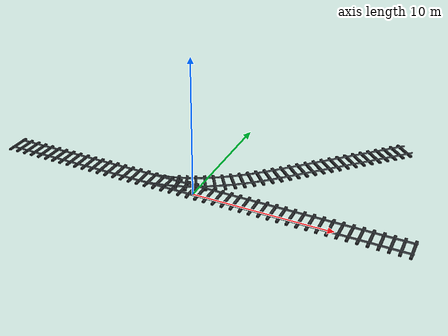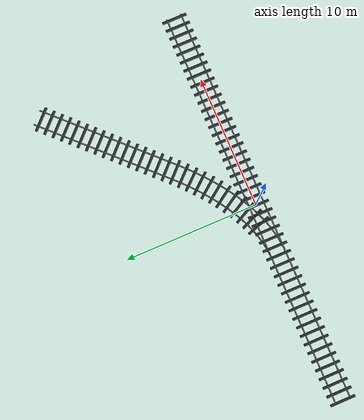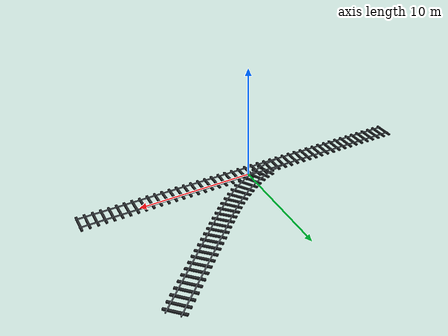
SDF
<sdf version="1.7">
 <world name="route_choice_training">
  <model name="route_choice_track">
   <static>true</static>
   <link name="track_link">
    <visual name="main_rail_left_000">
     <pose>0.00000 0.55000 0.35000 0 0 0.0000000</pose>
     <geometry><box><size>30.06000 0.07500 0.10000</size></box></geometry>
     <material>
      <ambient>0.42 0.45 0.48 1</ambient>
      <diffuse>0.42 0.45 0.48 1</diffuse>
      <specular>0.35 0.35 0.35 1</specular>
     </material>
    </visual>
    <visual name="main_rail_right_000">
     <pose>0.00000 -0.55000 0.35000 0 0 0.0000000</pose>
     <geometry><box><size>30.06000 0.07500 0.10000</size></box></geometry>
     <material>
      <ambient>0.42 0.45 0.48 1</ambient>
      <diffuse>0.42 0.45 0.48 1</diffuse>
      <specular>0.35 0.35 0.35 1</specular>
     </material>
    </visual>
    <collision name="main_support_000">
     <pose>0.00000 0.00000 0.30500 0 0 0.0000000</pose>
     <geometry><box><size>30.06000 2.10 0.05000</size></box></geometry>
     <surface><friction><ode><mu>1.0</mu><mu2>1.0</mu2></ode></friction></surface>
    </collision>
    <visual name="main_sleeper_000">
     <pose>-15.00000 0.00000 0.27000 0 0 0.0000000</pose>
     <geometry><box><size>0.18000 1.85000 0.12000</size></box></geometry>
     <material>
      <ambient>0.16 0.17 0.18 1</ambient>
      <diffuse>0.16 0.17 0.18 1</diffuse>
      <specular>0.35 0.35 0.35 1</specular>
     </material>
    </visual>
    <visual name="main_sleeper_001">
     <pose>-14.35000 0.00000 0.27000 0 0 0.0000000</pose>
     <geometry><box><size>0.18000 1.85000 0.12000</size></box></geometry>
     <material>
      <ambient>0.16 0.17 0.18 1</ambient>
      <diffuse>0.16 0.17 0.18 1</diffuse>
      <specular>0.35 0.35 0.35 1</specular>
     </material>
    </visual>
    <visual name="main_sleeper_002">
     <pose>-13.70000 0.00000 0.27000 0 0 0.0000000</pose>
     <geometry><box><size>0.18000 1.85000 0.12000</size></box></geometry>
     <material>
      <ambient>0.16 0.17 0.18 1</ambient>
      <diffuse>0.16 0.17 0.18 1</diffuse>
      <specular>0.35 0.35 0.35 1</specular>
     </material>
    </visual>
    <visual name="main_sleeper_003">
     <pose>-13.05000 0.00000 0.27000 0 0 0.0000000</pose>
     <geometry><box><size>0.18000 1.85000 0.12000</size></box></geometry>
     <material>
      <ambient>0.16 0.17 0.18 1</ambient>
      <diffuse>0.16 0.17 0.18 1</diffuse>
      <specular>0.35 0.35 0.35 1</specular>
     </material>
    </visual>
    <visual name="main_sleeper_004">
     <pose>-12.40000 0.00000 0.27000 0 0 0.0000000</pose>
     <geometry><box><size>0.18000 1.85000 0.12000</size></box></geometry>
     <material>
      <ambient>0.16 0.17 0.18 1</ambient>
      <diffuse>0.16 0.17 0.18 1</diffuse>
      <specular>0.35 0.35 0.35 1</specular>
     </material>
    </visual>
    <visual name="main_sleeper_005">
     <pose>-11.75000 0.00000 0.27000 0 0 0.0000000</pose>
     <geometry><box><size>0.18000 1.85000 0.12000</size></box></geometry>
     <material>
      <ambient>0.16 0.17 0.18 1</ambient>
      <diffuse>0.16 0.17 0.18 1</diffuse>
      <specular>0.35 0.35 0.35 1</specular>
     </material>
    </visual>
    <visual name="main_sleeper_006">
     <pose>-11.10000 0.00000 0.27000 0 0 0.0000000</pose>
     <geometry><box><size>0.18000 1.85000 0.12000</size></box></geometry>
     <material>
      <ambient>0.16 0.17 0.18 1</ambient>
      <diffuse>0.16 0.17 0.18 1</diffuse>
      <specular>0.35 0.35 0.35 1</specular>
     </material>
    </visual>
    <visual name="main_sleeper_007">
     <pose>-10.45000 0.00000 0.27000 0 0 0.0000000</pose>
     <geometry><box><size>0.18000 1.85000 0.12000</size></box></geometry>
     <material>
      <ambient>0.16 0.17 0.18 1</ambient>
      <diffuse>0.16 0.17 0.18 1</diffuse>
      <specular>0.35 0.35 0.35 1</specular>
     </material>
    </visual>
    <visual name="main_sleeper_008">
     <pose>-9.80000 0.00000 0.27000 0 0 0.0000000</pose>
     <geometry><box><size>0.18000 1.85000 0.12000</size></box></geometry>
     <material>
      <ambient>0.16 0.17 0.18 1</ambient>
      <diffuse>0.16 0.17 0.18 1</diffuse>
      <specular>0.35 0.35 0.35 1</specular>
     </material>
    </visual>
    <visual name="main_sleeper_009">
     <pose>-9.15000 0.00000 0.27000 0 0 0.0000000</pose>
     <geometry><box><size>0.18000 1.85000 0.12000</size></box></geometry>
     <material>
      <ambient>0.16 0.17 0.18 1</ambient>
      <diffuse>0.16 0.17 0.18 1</diffuse>
      <specular>0.35 0.35 0.35 1</specular>
     </material>
    </visual>
    <visual name="main_sleeper_010">
     <pose>-8.50000 0.00000 0.27000 0 0 0.0000000</pose>
     <geometry><box><size>0.18000 1.85000 0.12000</size></box></geometry>
     <material>
      <ambient>0.16 0.17 0.18 1</ambient>
      <diffuse>0.16 0.17 0.18 1</diffuse>
      <specular>0.35 0.35 0.35 1</specular>
     </material>
    </visual>
    <visual name="main_sleeper_011">
     <pose>-7.85000 0.00000 0.27000 0 0 0.0000000</pose>
     <geometry><box><size>0.18000 1.85000 0.12000</size></box></geometry>
     <material>
      <ambient>0.16 0.17 0.18 1</ambient>
      <diffuse>0.16 0.17 0.18 1</diffuse>
      <specular>0.35 0.35 0.35 1</specular>
     </material>
    </visual>
    <visual name="main_sleeper_012">
     <pose>-7.20000 0.00000 0.27000 0 0 0.0000000</pose>
     <geometry><box><size>0.18000 1.85000 0.12000</size></box></geometry>
     <material>
      <ambient>0.16 0.17 0.18 1</ambient>
      <diffuse>0.16 0.17 0.18 1</diffuse>
      <specular>0.35 0.35 0.35 1</specular>
     </material>
    </visual>
    <visual name="main_sleeper_013">
     <pose>-6.55000 0.00000 0.27000 0 0 0.0000000</pose>
     <geometry><box><size>0.18000 1.85000 0.12000</size></box></geometry>
     <material>
      <ambient>0.16 0.17 0.18 1</ambient>
      <diffuse>0.16 0.17 0.18 1</diffuse>
      <specular>0.35 0.35 0.35 1</specular>
     </material>
    </visual>
    <visual name="main_sleeper_014">
     <pose>-5.90000 0.00000 0.27000 0 0 0.0000000</pose>
     <geometry><box><size>0.18000 1.85000 0.12000</size></box></geometry>
     <material>
      <ambient>0.16 0.17 0.18 1</ambient>
      <diffuse>0.16 0.17 0.18 1</diffuse>
      <specular>0.35 0.35 0.35 1</specular>
     </material>
    </visual>
    <visual name="main_sleeper_015">
     <pose>-5.25000 0.00000 0.27000 0 0 0.0000000</pose>
     <geometry><box><size>0.18000 1.85000 0.12000</size></box></geometry>
     <material>
      <ambient>0.16 0.17 0.18 1</ambient>
      <diffuse>0.16 0.17 0.18 1</diffuse>
      <specular>0.35 0.35 0.35 1</specular>
     </material>
    </visual>
    <visual name="main_sleeper_016">
     <pose>-4.60000 0.00000 0.27000 0 0 0.0000000</pose>
     <geometry><box><size>0.18000 1.85000 0.12000</size></box></geometry>
     <material>
      <ambient>0.16 0.17 0.18 1</ambient>
      <diffuse>0.16 0.17 0.18 1</diffuse>
      <specular>0.35 0.35 0.35 1</specular>
     </material>
    </visual>
    <visual name="main_sleeper_017">
     <pose>-3.95000 0.00000 0.27000 0 0 0.0000000</pose>
     <geometry><box><size>0.18000 1.85000 0.12000</size></box></geometry>
     <material>
      <ambient>0.16 0.17 0.18 1</ambient>
      <diffuse>0.16 0.17 0.18 1</diffuse>
      <specular>0.35 0.35 0.35 1</specular>
     </material>
    </visual>
    <visual name="main_sleeper_018">
     <pose>-3.30000 0.00000 0.27000 0 0 0.0000000</pose>
     <geometry><box><size>0.18000 1.85000 0.12000</size></box></geometry>
     <material>
      <ambient>0.16 0.17 0.18 1</ambient>
      <diffuse>0.16 0.17 0.18 1</diffuse>
      <specular>0.35 0.35 0.35 1</specular>
     </material>
    </visual>
    <visual name="main_sleeper_019">
     <pose>-2.65000 0.00000 0.27000 0 0 0.0000000</pose>
     <geometry><box><size>0.18000 1.85000 0.12000</size></box></geometry>
     <material>
      <ambient>0.16 0.17 0.18 1</ambient>
      <diffuse>0.16 0.17 0.18 1</diffuse>
      <specular>0.35 0.35 0.35 1</specular>
     </material>
    </visual>
    <visual name="main_sleeper_020">
     <pose>-2.00000 0.00000 0.27000 0 0 0.0000000</pose>
     <geometry><box><size>0.18000 1.85000 0.12000</size></box></geometry>
     <material>
      <ambient>0.16 0.17 0.18 1</ambient>
      <diffuse>0.16 0.17 0.18 1</diffuse>
      <specular>0.35 0.35 0.35 1</specular>
     </material>
    </visual>
    <visual name="main_sleeper_021">
     <pose>-1.35000 0.00000 0.27000 0 0 0.0000000</pose>
     <geometry><box><size>0.18000 1.85000 0.12000</size></box></geometry>
     <material>
      <ambient>0.16 0.17 0.18 1</ambient>
      <diffuse>0.16 0.17 0.18 1</diffuse>
      <specular>0.35 0.35 0.35 1</specular>
     </material>
    </visual>
    <visual name="main_sleeper_022">
     <pose>-0.70000 0.00000 0.27000 0 0 0.0000000</pose>
     <geometry><box><size>0.18000 1.85000 0.12000</size></box></geometry>
     <material>
      <ambient>0.16 0.17 0.18 1</ambient>
      <diffuse>0.16 0.17 0.18 1</diffuse>
      <specular>0.35 0.35 0.35 1</specular>
     </material>
    </visual>
    <visual name="main_sleeper_023">
     <pose>-0.05000 0.00000 0.27000 0 0 0.0000000</pose>
     <geometry><box><size>0.18000 1.85000 0.12000</size></box></geometry>
     <material>
      <ambient>0.16 0.17 0.18 1</ambient>
      <diffuse>0.16 0.17 0.18 1</diffuse>
      <specular>0.35 0.35 0.35 1</specular>
     </material>
    </visual>
    <visual name="main_sleeper_024">
     <pose>0.60000 0.00000 0.27000 0 0 0.0000000</pose>
     <geometry><box><size>0.18000 1.85000 0.12000</size></box></geometry>
     <material>
      <ambient>0.16 0.17 0.18 1</ambient>
      <diffuse>0.16 0.17 0.18 1</diffuse>
      <specular>0.35 0.35 0.35 1</specular>
     </material>
    </visual>
    <visual name="main_sleeper_025">
     <pose>1.25000 0.00000 0.27000 0 0 0.0000000</pose>
     <geometry><box><size>0.18000 1.85000 0.12000</size></box></geometry>
     <material>
      <ambient>0.16 0.17 0.18 1</ambient>
      <diffuse>0.16 0.17 0.18 1</diffuse>
      <specular>0.35 0.35 0.35 1</specular>
     </material>
    </visual>
    <visual name="main_sleeper_026">
     <pose>1.90000 0.00000 0.27000 0 0 0.0000000</pose>
     <geometry><box><size>0.18000 1.85000 0.12000</size></box></geometry>
     <material>
      <ambient>0.16 0.17 0.18 1</ambient>
      <diffuse>0.16 0.17 0.18 1</diffuse>
      <specular>0.35 0.35 0.35 1</specular>
     </material>
    </visual>
    <visual name="main_sleeper_027">
     <pose>2.55000 0.00000 0.27000 0 0 0.0000000</pose>
     <geometry><box><size>0.18000 1.85000 0.12000</size></box></geometry>
     <material>
      <ambient>0.16 0.17 0.18 1</ambient>
      <diffuse>0.16 0.17 0.18 1</diffuse>
      <specular>0.35 0.35 0.35 1</specular>
     </material>
    </visual>
    <visual name="main_sleeper_028">
     <pose>3.20000 0.00000 0.27000 0 0 0.0000000</pose>
     <geometry><box><size>0.18000 1.85000 0.12000</size></box></geometry>
     <material>
      <ambient>0.16 0.17 0.18 1</ambient>
      <diffuse>0.16 0.17 0.18 1</diffuse>
      <specular>0.35 0.35 0.35 1</specular>
     </material>
    </visual>
    <visual name="main_sleeper_029">
     <pose>3.85000 0.00000 0.27000 0 0 0.0000000</pose>
     <geometry><box><size>0.18000 1.85000 0.12000</size></box></geometry>
     <material>
      <ambient>0.16 0.17 0.18 1</ambient>
      <diffuse>0.16 0.17 0.18 1</diffuse>
      <specular>0.35 0.35 0.35 1</specular>
     </material>
    </visual>
    <visual name="main_sleeper_030">
     <pose>4.50000 0.00000 0.27000 0 0 0.0000000</pose>
     <geometry><box><size>0.18000 1.85000 0.12000</size></box></geometry>
     <material>
      <ambient>0.16 0.17 0.18 1</ambient>
      <diffuse>0.16 0.17 0.18 1</diffuse>
      <specular>0.35 0.35 0.35 1</specular>
     </material>
    </visual>
    <visual name="main_sleeper_031">
     <pose>5.15000 0.00000 0.27000 0 0 0.0000000</pose>
     <geometry><box><size>0.18000 1.85000 0.12000</size></box></geometry>
     <material>
      <ambient>0.16 0.17 0.18 1</ambient>
      <diffuse>0.16 0.17 0.18 1</diffuse>
      <specular>0.35 0.35 0.35 1</specular>
     </material>
    </visual>
    <visual name="main_sleeper_032">
     <pose>5.80000 0.00000 0.27000 0 0 0.0000000</pose>
     <geometry><box><size>0.18000 1.85000 0.12000</size></box></geometry>
     <material>
      <ambient>0.16 0.17 0.18 1</ambient>
      <diffuse>0.16 0.17 0.18 1</diffuse>
      <specular>0.35 0.35 0.35 1</specular>
     </material>
    </visual>
    <visual name="main_sleeper_033">
     <pose>6.45000 0.00000 0.27000 0 0 0.0000000</pose>
     <geometry><box><size>0.18000 1.85000 0.12000</size></box></geometry>
     <material>
      <ambient>0.16 0.17 0.18 1</ambient>
      <diffuse>0.16 0.17 0.18 1</diffuse>
      <specular>0.35 0.35 0.35 1</specular>
     </material>
    </visual>
    <visual name="main_sleeper_034">
     <pose>7.10000 0.00000 0.27000 0 0 0.0000000</pose>
     <geometry><box><size>0.18000 1.85000 0.12000</size></box></geometry>
     <material>
      <ambient>0.16 0.17 0.18 1</ambient>
      <diffuse>0.16 0.17 0.18 1</diffuse>
      <specular>0.35 0.35 0.35 1</specular>
     </material>
    </visual>
    <visual name="main_sleeper_035">
     <pose>7.75000 0.00000 0.27000 0 0 0.0000000</pose>
     <geometry><box><size>0.18000 1.85000 0.12000</size></box></geometry>
     <material>
      <ambient>0.16 0.17 0.18 1</ambient>
      <diffuse>0.16 0.17 0.18 1</diffuse>
      <specular>0.35 0.35 0.35 1</specular>
     </material>
    </visual>
    <visual name="main_sleeper_036">
     <pose>8.40000 0.00000 0.27000 0 0 0.0000000</pose>
     <geometry><box><size>0.18000 1.85000 0.12000</size></box></geometry>
     <material>
      <ambient>0.16 0.17 0.18 1</ambient>
      <diffuse>0.16 0.17 0.18 1</diffuse>
      <specular>0.35 0.35 0.35 1</specular>
     </material>
    </visual>
    <visual name="main_sleeper_037">
     <pose>9.05000 0.00000 0.27000 0 0 0.0000000</pose>
     <geometry><box><size>0.18000 1.85000 0.12000</size></box></geometry>
     <material>
      <ambient>0.16 0.17 0.18 1</ambient>
      <diffuse>0.16 0.17 0.18 1</diffuse>
      <specular>0.35 0.35 0.35 1</specular>
     </material>
    </visual>
    <visual name="main_sleeper_038">
     <pose>9.70000 0.00000 0.27000 0 0 0.0000000</pose>
     <geometry><box><size>0.18000 1.85000 0.12000</size></box></geometry>
     <material>
      <ambient>0.16 0.17 0.18 1</ambient>
      <diffuse>0.16 0.17 0.18 1</diffuse>
      <specular>0.35 0.35 0.35 1</specular>
     </material>
    </visual>
    <visual name="main_sleeper_039">
     <pose>10.35000 0.00000 0.27000 0 0 0.0000000</pose>
     <geometry><box><size>0.18000 1.85000 0.12000</size></box></geometry>
     <material>
      <ambient>0.16 0.17 0.18 1</ambient>
      <diffuse>0.16 0.17 0.18 1</diffuse>
      <specular>0.35 0.35 0.35 1</specular>
     </material>
    </visual>
    <visual name="main_sleeper_040">
     <pose>11.00000 0.00000 0.27000 0 0 0.0000000</pose>
     <geometry><box><size>0.18000 1.85000 0.12000</size></box></geometry>
     <material>
      <ambient>0.16 0.17 0.18 1</ambient>
      <diffuse>0.16 0.17 0.18 1</diffuse>
      <specular>0.35 0.35 0.35 1</specular>
     </material>
    </visual>
    <visual name="main_sleeper_041">
     <pose>11.65000 0.00000 0.27000 0 0 0.0000000</pose>
     <geometry><box><size>0.18000 1.85000 0.12000</size></box></geometry>
     <material>
      <ambient>0.16 0.17 0.18 1</ambient>
      <diffuse>0.16 0.17 0.18 1</diffuse>
      <specular>0.35 0.35 0.35 1</specular>
     </material>
    </visual>
    <visual name="main_sleeper_042">
     <pose>12.30000 0.00000 0.27000 0 0 0.0000000</pose>
     <geometry><box><size>0.18000 1.85000 0.12000</size></box></geometry>
     <material>
      <ambient>0.16 0.17 0.18 1</ambient>
      <diffuse>0.16 0.17 0.18 1</diffuse>
      <specular>0.35 0.35 0.35 1</specular>
     </material>
    </visual>
    <visual name="main_sleeper_043">
     <pose>12.95000 0.00000 0.27000 0 0 0.0000000</pose>
     <geometry><box><size>0.18000 1.85000 0.12000</size></box></geometry>
     <material>
      <ambient>0.16 0.17 0.18 1</ambient>
      <diffuse>0.16 0.17 0.18 1</diffuse>
      <specular>0.35 0.35 0.35 1</specular>
     </material>
    </visual>
    <visual name="main_sleeper_044">
     <pose>13.60000 0.00000 0.27000 0 0 0.0000000</pose>
     <geometry><box><size>0.18000 1.85000 0.12000</size></box></geometry>
     <material>
      <ambient>0.16 0.17 0.18 1</ambient>
      <diffuse>0.16 0.17 0.18 1</diffuse>
      <specular>0.35 0.35 0.35 1</specular>
     </material>
    </visual>
    <visual name="main_sleeper_045">
     <pose>14.25000 0.00000 0.27000 0 0 0.0000000</pose>
     <geometry><box><size>0.18000 1.85000 0.12000</size></box></geometry>
     <material>
      <ambient>0.16 0.17 0.18 1</ambient>
      <diffuse>0.16 0.17 0.18 1</diffuse>
      <specular>0.35 0.35 0.35 1</specular>
     </material>
    </visual>
    <visual name="main_sleeper_046">
     <pose>14.90000 0.00000 0.27000 0 0 0.0000000</pose>
     <geometry><box><size>0.18000 1.85000 0.12000</size></box></geometry>
     <material>
      <ambient>0.16 0.17 0.18 1</ambient>
      <diffuse>0.16 0.17 0.18 1</diffuse>
      <specular>0.35 0.35 0.35 1</specular>
     </material>
    </visual>
    <visual name="branch_rail_left_000">
     <pose>-3.82763 0.55495 0.35000 0 0 0.0274842</pose>
     <geometry><box><size>0.43511 0.07500 0.10000</size></box></geometry>
     <material>
      <ambient>0.42 0.45 0.48 1</ambient>
      <diffuse>0.42 0.45 0.48 1</diffuse>
      <specular>0.35 0.35 0.35 1</specular>
     </material>
    </visual>
    <visual name="branch_rail_right_000">
     <pose>-3.79740 -0.54464 0.35000 0 0 0.0274842</pose>
     <geometry><box><size>0.43511 0.07500 0.10000</size></box></geometry>
     <material>
      <ambient>0.42 0.45 0.48 1</ambient>
      <diffuse>0.42 0.45 0.48 1</diffuse>
      <specular>0.35 0.35 0.35 1</specular>
     </material>
    </visual>
    <collision name="branch_support_000">
     <pose>-3.81252 0.00515 0.30500 0 0 0.0274842</pose>
     <geometry><box><size>0.43511 2.10 0.05000</size></box></geometry>
     <surface><friction><ode><mu>1.0</mu><mu2>1.0</mu2></ode></friction></surface>
    </collision>
    <visual name="branch_rail_left_001">
     <pose>-3.48226 0.57374 0.35000 0 0 0.0811840</pose>
     <geometry><box><size>0.43599 0.07500 0.10000</size></box></geometry>
     <material>
      <ambient>0.42 0.45 0.48 1</ambient>
      <diffuse>0.42 0.45 0.48 1</diffuse>
      <specular>0.35 0.35 0.35 1</specular>
     </material>
    </visual>
    <visual name="branch_rail_right_001">
     <pose>-3.39306 -0.52264 0.35000 0 0 0.0811840</pose>
     <geometry><box><size>0.43599 0.07500 0.10000</size></box></geometry>
     <material>
      <ambient>0.42 0.45 0.48 1</ambient>
      <diffuse>0.42 0.45 0.48 1</diffuse>
      <specular>0.35 0.35 0.35 1</specular>
     </material>
    </visual>
    <collision name="branch_support_001">
     <pose>-3.43766 0.02555 0.30500 0 0 0.0811840</pose>
     <geometry><box><size>0.43599 2.10 0.05000</size></box></geometry>
     <surface><friction><ode><mu>1.0</mu><mu2>1.0</mu2></ode></friction></surface>
    </collision>
    <visual name="branch_rail_left_002">
     <pose>-3.13599 0.61096 0.35000 0 0 0.1328490</pose>
     <geometry><box><size>0.43764 0.07500 0.10000</size></box></geometry>
     <material>
      <ambient>0.42 0.45 0.48 1</ambient>
      <diffuse>0.42 0.45 0.48 1</diffuse>
      <specular>0.35 0.35 0.35 1</specular>
     </material>
    </visual>
    <visual name="branch_rail_right_002">
     <pose>-2.99028 -0.47934 0.35000 0 0 0.1328490</pose>
     <geometry><box><size>0.43764 0.07500 0.10000</size></box></geometry>
     <material>
      <ambient>0.42 0.45 0.48 1</ambient>
      <diffuse>0.42 0.45 0.48 1</diffuse>
      <specular>0.35 0.35 0.35 1</specular>
     </material>
    </visual>
    <collision name="branch_support_002">
     <pose>-3.06313 0.06581 0.30500 0 0 0.1328490</pose>
     <geometry><box><size>0.43764 2.10 0.05000</size></box></geometry>
     <surface><friction><ode><mu>1.0</mu><mu2>1.0</mu2></ode></friction></surface>
    </collision>
    <visual name="branch_rail_left_003">
     <pose>-2.78888 0.66615 0.35000 0 0 0.1823482</pose>
     <geometry><box><size>0.43996 0.07500 0.10000</size></box></geometry>
     <material>
      <ambient>0.42 0.45 0.48 1</ambient>
      <diffuse>0.42 0.45 0.48 1</diffuse>
      <specular>0.35 0.35 0.35 1</specular>
     </material>
    </visual>
    <visual name="branch_rail_right_003">
     <pose>-2.58941 -0.41561 0.35000 0 0 0.1823482</pose>
     <geometry><box><size>0.43996 0.07500 0.10000</size></box></geometry>
     <material>
      <ambient>0.42 0.45 0.48 1</ambient>
      <diffuse>0.42 0.45 0.48 1</diffuse>
      <specular>0.35 0.35 0.35 1</specular>
     </material>
    </visual>
    <collision name="branch_support_003">
     <pose>-2.68915 0.12527 0.30500 0 0 0.1823482</pose>
     <geometry><box><size>0.43996 2.10 0.05000</size></box></geometry>
     <surface><friction><ode><mu>1.0</mu><mu2>1.0</mu2></ode></friction></surface>
    </collision>
    <visual name="branch_rail_left_004">
     <pose>-2.44109 0.73885 0.35000 0 0 0.2296030</pose>
     <geometry><box><size>0.44284 0.07500 0.10000</size></box></geometry>
     <material>
      <ambient>0.42 0.45 0.48 1</ambient>
      <diffuse>0.42 0.45 0.48 1</diffuse>
      <specular>0.35 0.35 0.35 1</specular>
     </material>
    </visual>
    <visual name="branch_rail_right_004">
     <pose>-2.19074 -0.33228 0.35000 0 0 0.2296030</pose>
     <geometry><box><size>0.44284 0.07500 0.10000</size></box></geometry>
     <material>
      <ambient>0.42 0.45 0.48 1</ambient>
      <diffuse>0.42 0.45 0.48 1</diffuse>
      <specular>0.35 0.35 0.35 1</specular>
     </material>
    </visual>
    <collision name="branch_support_004">
     <pose>-2.31592 0.20329 0.30500 0 0 0.2296030</pose>
     <geometry><box><size>0.44284 2.10 0.05000</size></box></geometry>
     <surface><friction><ode><mu>1.0</mu><mu2>1.0</mu2></ode></friction></surface>
    </collision>
    <visual name="branch_rail_left_005">
     <pose>-2.09280 0.82860 0.35000 0 0 0.2745816</pose>
     <geometry><box><size>0.44618 0.07500 0.10000</size></box></geometry>
     <material>
      <ambient>0.42 0.45 0.48 1</ambient>
      <diffuse>0.42 0.45 0.48 1</diffuse>
      <specular>0.35 0.35 0.35 1</specular>
     </material>
    </visual>
    <visual name="branch_rail_right_005">
     <pose>-1.79454 -0.23019 0.35000 0 0 0.2745816</pose>
     <geometry><box><size>0.44618 0.07500 0.10000</size></box></geometry>
     <material>
      <ambient>0.42 0.45 0.48 1</ambient>
      <diffuse>0.42 0.45 0.48 1</diffuse>
      <specular>0.35 0.35 0.35 1</specular>
     </material>
    </visual>
    <collision name="branch_support_005">
     <pose>-1.94367 0.29921 0.30500 0 0 0.2745816</pose>
     <geometry><box><size>0.44618 2.10 0.05000</size></box></geometry>
     <surface><friction><ode><mu>1.0</mu><mu2>1.0</mu2></ode></friction></surface>
    </collision>
    <visual name="branch_rail_left_006">
     <pose>-1.74421 0.93493 0.35000 0 0 0.3172913</pose>
     <geometry><box><size>0.44987 0.07500 0.10000</size></box></geometry>
     <material>
      <ambient>0.42 0.45 0.48 1</ambient>
      <diffuse>0.42 0.45 0.48 1</diffuse>
      <specular>0.35 0.35 0.35 1</specular>
     </material>
    </visual>
    <visual name="branch_rail_right_006">
     <pose>-1.40101 -0.11017 0.35000 0 0 0.3172913</pose>
     <geometry><box><size>0.44987 0.07500 0.10000</size></box></geometry>
     <material>
      <ambient>0.42 0.45 0.48 1</ambient>
      <diffuse>0.42 0.45 0.48 1</diffuse>
      <specular>0.35 0.35 0.35 1</specular>
     </material>
    </visual>
    <collision name="branch_support_006">
     <pose>-1.57261 0.41238 0.30500 0 0 0.3172913</pose>
     <geometry><box><size>0.44987 2.10 0.05000</size></box></geometry>
     <surface><friction><ode><mu>1.0</mu><mu2>1.0</mu2></ode></friction></surface>
    </collision>
    <visual name="branch_rail_left_007">
     <pose>-1.39557 1.05733 0.35000 0 0 0.3577710</pose>
     <geometry><box><size>0.45382 0.07500 0.10000</size></box></geometry>
     <material>
      <ambient>0.42 0.45 0.48 1</ambient>
      <diffuse>0.42 0.45 0.48 1</diffuse>
      <specular>0.35 0.35 0.35 1</specular>
     </material>
    </visual>
    <visual name="branch_rail_right_007">
     <pose>-1.01036 0.02698 0.35000 0 0 0.3577710</pose>
     <geometry><box><size>0.45382 0.07500 0.10000</size></box></geometry>
     <material>
      <ambient>0.42 0.45 0.48 1</ambient>
      <diffuse>0.42 0.45 0.48 1</diffuse>
      <specular>0.35 0.35 0.35 1</specular>
     </material>
    </visual>
    <collision name="branch_support_007">
     <pose>-1.20296 0.54215 0.30500 0 0 0.3577710</pose>
     <geometry><box><size>0.45382 2.10 0.05000</size></box></geometry>
     <surface><friction><ode><mu>1.0</mu><mu2>1.0</mu2></ode></friction></surface>
    </collision>
    <visual name="branch_rail_left_008">
     <pose>-1.04714 1.19530 0.35000 0 0 0.3960845</pose>
     <geometry><box><size>0.45796 0.07500 0.10000</size></box></geometry>
     <material>
      <ambient>0.42 0.45 0.48 1</ambient>
      <diffuse>0.42 0.45 0.48 1</diffuse>
      <specular>0.35 0.35 0.35 1</specular>
     </material>
    </visual>
    <visual name="branch_rail_right_008">
     <pose>-0.62275 0.18046 0.35000 0 0 0.3960845</pose>
     <geometry><box><size>0.45796 0.07500 0.10000</size></box></geometry>
     <material>
      <ambient>0.42 0.45 0.48 1</ambient>
      <diffuse>0.42 0.45 0.48 1</diffuse>
      <specular>0.35 0.35 0.35 1</specular>
     </material>
    </visual>
    <collision name="branch_support_008">
     <pose>-0.83494 0.68788 0.30500 0 0 0.3960845</pose>
     <geometry><box><size>0.45796 2.10 0.05000</size></box></geometry>
     <surface><friction><ode><mu>1.0</mu><mu2>1.0</mu2></ode></friction></surface>
    </collision>
    <visual name="branch_rail_left_009">
     <pose>-0.69920 1.34830 0.35000 0 0 0.4323136</pose>
     <geometry><box><size>0.46220 0.07500 0.10000</size></box></geometry>
     <material>
      <ambient>0.42 0.45 0.48 1</ambient>
      <diffuse>0.42 0.45 0.48 1</diffuse>
      <specular>0.35 0.35 0.35 1</specular>
     </material>
    </visual>
    <visual name="branch_rail_right_009">
     <pose>-0.23833 0.34950 0.35000 0 0 0.4323136</pose>
     <geometry><box><size>0.46220 0.07500 0.10000</size></box></geometry>
     <material>
      <ambient>0.42 0.45 0.48 1</ambient>
      <diffuse>0.42 0.45 0.48 1</diffuse>
      <specular>0.35 0.35 0.35 1</specular>
     </material>
    </visual>
    <collision name="branch_support_009">
     <pose>-0.46877 0.84890 0.30500 0 0 0.4323136</pose>
     <geometry><box><size>0.46220 2.10 0.05000</size></box></geometry>
     <surface><friction><ode><mu>1.0</mu><mu2>1.0</mu2></ode></friction></surface>
    </collision>
    <visual name="branch_rail_left_010">
     <pose>-0.35205 1.51580 0.35000 0 0 0.4665526</pose>
     <geometry><box><size>0.46647 0.07500 0.10000</size></box></geometry>
     <material>
      <ambient>0.42 0.45 0.48 1</ambient>
      <diffuse>0.42 0.45 0.48 1</diffuse>
      <specular>0.35 0.35 0.35 1</specular>
     </material>
    </visual>
    <visual name="branch_rail_right_010">
     <pose>0.14274 0.53336 0.35000 0 0 0.4665526</pose>
     <geometry><box><size>0.46647 0.07500 0.10000</size></box></geometry>
     <material>
      <ambient>0.42 0.45 0.48 1</ambient>
      <diffuse>0.42 0.45 0.48 1</diffuse>
      <specular>0.35 0.35 0.35 1</specular>
     </material>
    </visual>
    <collision name="branch_support_010">
     <pose>-0.10465 1.02458 0.30500 0 0 0.4665526</pose>
     <geometry><box><size>0.46647 2.10 0.05000</size></box></geometry>
     <surface><friction><ode><mu>1.0</mu><mu2>1.0</mu2></ode></friction></surface>
    </collision>
    <visual name="branch_rail_left_011">
     <pose>-0.00598 1.69721 0.35000 0 0 0.4989039</pose>
     <geometry><box><size>0.47070 0.07500 0.10000</size></box></geometry>
     <material>
      <ambient>0.42 0.45 0.48 1</ambient>
      <diffuse>0.42 0.45 0.48 1</diffuse>
      <specular>0.35 0.35 0.35 1</specular>
     </material>
    </visual>
    <visual name="branch_rail_right_011">
     <pose>0.52033 0.73129 0.35000 0 0 0.4989039</pose>
     <geometry><box><size>0.47070 0.07500 0.10000</size></box></geometry>
     <material>
      <ambient>0.42 0.45 0.48 1</ambient>
      <diffuse>0.42 0.45 0.48 1</diffuse>
      <specular>0.35 0.35 0.35 1</specular>
     </material>
    </visual>
    <collision name="branch_support_011">
     <pose>0.25718 1.21425 0.30500 0 0 0.4989039</pose>
     <geometry><box><size>0.47070 2.10 0.05000</size></box></geometry>
     <surface><friction><ode><mu>1.0</mu><mu2>1.0</mu2></ode></friction></surface>
    </collision>
    <visual name="branch_rail_left_012">
     <pose>0.33872 1.89195 0.35000 0 0 0.5294740</pose>
     <geometry><box><size>0.47484 0.07500 0.10000</size></box></geometry>
     <material>
      <ambient>0.42 0.45 0.48 1</ambient>
      <diffuse>0.42 0.45 0.48 1</diffuse>
      <specular>0.35 0.35 0.35 1</specular>
     </material>
    </visual>
    <visual name="branch_rail_right_012">
     <pose>0.89431 0.94257 0.35000 0 0 0.5294740</pose>
     <geometry><box><size>0.47484 0.07500 0.10000</size></box></geometry>
     <material>
      <ambient>0.42 0.45 0.48 1</ambient>
      <diffuse>0.42 0.45 0.48 1</diffuse>
      <specular>0.35 0.35 0.35 1</specular>
     </material>
    </visual>
    <collision name="branch_support_012">
     <pose>0.61652 1.41726 0.30500 0 0 0.5294740</pose>
     <geometry><box><size>0.47484 2.10 0.05000</size></box></geometry>
     <surface><friction><ode><mu>1.0</mu><mu2>1.0</mu2></ode></friction></surface>
    </collision>
    <visual name="branch_rail_left_013">
     <pose>0.68175 2.09944 0.35000 0 0 0.5583705</pose>
     <geometry><box><size>0.47883 0.07500 0.10000</size></box></geometry>
     <material>
      <ambient>0.42 0.45 0.48 1</ambient>
      <diffuse>0.42 0.45 0.48 1</diffuse>
      <specular>0.35 0.35 0.35 1</specular>
     </material>
    </visual>
    <visual name="branch_rail_right_013">
     <pose>1.26454 1.16651 0.35000 0 0 0.5583705</pose>
     <geometry><box><size>0.47883 0.07500 0.10000</size></box></geometry>
     <material>
      <ambient>0.42 0.45 0.48 1</ambient>
      <diffuse>0.42 0.45 0.48 1</diffuse>
      <specular>0.35 0.35 0.35 1</specular>
     </material>
    </visual>
    <collision name="branch_support_013">
     <pose>0.97314 1.63298 0.30500 0 0 0.5583705</pose>
     <geometry><box><size>0.47883 2.10 0.05000</size></box></geometry>
     <surface><friction><ode><mu>1.0</mu><mu2>1.0</mu2></ode></friction></surface>
    </collision>
    <visual name="branch_rail_left_014">
     <pose>1.02281 2.31906 0.35000 0 0 0.5857002</pose>
     <geometry><box><size>0.48262 0.07500 0.10000</size></box></geometry>
     <material>
      <ambient>0.42 0.45 0.48 1</ambient>
      <diffuse>0.42 0.45 0.48 1</diffuse>
      <specular>0.35 0.35 0.35 1</specular>
     </material>
    </visual>
    <visual name="branch_rail_right_014">
     <pose>1.63087 1.40240 0.35000 0 0 0.5857002</pose>
     <geometry><box><size>0.48262 0.07500 0.10000</size></box></geometry>
     <material>
      <ambient>0.42 0.45 0.48 1</ambient>
      <diffuse>0.42 0.45 0.48 1</diffuse>
      <specular>0.35 0.35 0.35 1</specular>
     </material>
    </visual>
    <collision name="branch_support_014">
     <pose>1.32684 1.86073 0.30500 0 0 0.5857002</pose>
     <geometry><box><size>0.48262 2.10 0.05000</size></box></geometry>
     <surface><friction><ode><mu>1.0</mu><mu2>1.0</mu2></ode></friction></surface>
    </collision>
    <visual name="branch_rail_left_015">
     <pose>1.36161 2.55019 0.35000 0 0 0.6115673</pose>
     <geometry><box><size>0.48616 0.07500 0.10000</size></box></geometry>
     <material>
      <ambient>0.42 0.45 0.48 1</ambient>
      <diffuse>0.42 0.45 0.48 1</diffuse>
      <specular>0.35 0.35 0.35 1</specular>
     </material>
    </visual>
    <visual name="branch_rail_right_015">
     <pose>1.99317 1.64957 0.35000 0 0 0.6115673</pose>
     <geometry><box><size>0.48616 0.07500 0.10000</size></box></geometry>
     <material>
      <ambient>0.42 0.45 0.48 1</ambient>
      <diffuse>0.42 0.45 0.48 1</diffuse>
      <specular>0.35 0.35 0.35 1</specular>
     </material>
    </visual>
    <collision name="branch_support_015">
     <pose>1.67739 2.09988 0.30500 0 0 0.6115673</pose>
     <geometry><box><size>0.48616 2.10 0.05000</size></box></geometry>
     <surface><friction><ode><mu>1.0</mu><mu2>1.0</mu2></ode></friction></surface>
    </collision>
    <visual name="branch_rail_left_016">
     <pose>1.69785 2.79221 0.35000 0 0 0.6360724</pose>
     <geometry><box><size>0.48943 0.07500 0.10000</size></box></geometry>
     <material>
      <ambient>0.42 0.45 0.48 1</ambient>
      <diffuse>0.42 0.45 0.48 1</diffuse>
      <specular>0.35 0.35 0.35 1</specular>
     </material>
    </visual>
    <visual name="branch_rail_right_016">
     <pose>2.35130 1.90733 0.35000 0 0 0.6360724</pose>
     <geometry><box><size>0.48943 0.07500 0.10000</size></box></geometry>
     <material>
      <ambient>0.42 0.45 0.48 1</ambient>
      <diffuse>0.42 0.45 0.48 1</diffuse>
      <specular>0.35 0.35 0.35 1</specular>
     </material>
    </visual>
    <collision name="branch_support_016">
     <pose>2.02458 2.34977 0.30500 0 0 0.6360724</pose>
     <geometry><box><size>0.48943 2.10 0.05000</size></box></geometry>
     <surface><friction><ode><mu>1.0</mu><mu2>1.0</mu2></ode></friction></surface>
    </collision>
    <visual name="branch_rail_left_017">
     <pose>2.03127 3.04448 0.35000 0 0 0.6593117</pose>
     <geometry><box><size>0.49238 0.07500 0.10000</size></box></geometry>
     <material>
      <ambient>0.42 0.45 0.48 1</ambient>
      <diffuse>0.42 0.45 0.48 1</diffuse>
      <specular>0.35 0.35 0.35 1</specular>
     </material>
    </visual>
    <visual name="branch_rail_right_017">
     <pose>2.70510 2.17503 0.35000 0 0 0.6593117</pose>
     <geometry><box><size>0.49238 0.07500 0.10000</size></box></geometry>
     <material>
      <ambient>0.42 0.45 0.48 1</ambient>
      <diffuse>0.42 0.45 0.48 1</diffuse>
      <specular>0.35 0.35 0.35 1</specular>
     </material>
    </visual>
    <collision name="branch_support_017">
     <pose>2.36818 2.60975 0.30500 0 0 0.6593117</pose>
     <geometry><box><size>0.49238 2.10 0.05000</size></box></geometry>
     <surface><friction><ode><mu>1.0</mu><mu2>1.0</mu2></ode></friction></surface>
    </collision>
    <visual name="branch_rail_left_018">
     <pose>2.36157 3.30637 0.35000 0 0 0.6813768</pose>
     <geometry><box><size>0.49498 0.07500 0.10000</size></box></geometry>
     <material>
      <ambient>0.42 0.45 0.48 1</ambient>
      <diffuse>0.42 0.45 0.48 1</diffuse>
      <specular>0.35 0.35 0.35 1</specular>
     </material>
    </visual>
    <visual name="branch_rail_right_018">
     <pose>3.05441 2.45199 0.35000 0 0 0.6813768</pose>
     <geometry><box><size>0.49498 0.07500 0.10000</size></box></geometry>
     <material>
      <ambient>0.42 0.45 0.48 1</ambient>
      <diffuse>0.42 0.45 0.48 1</diffuse>
      <specular>0.35 0.35 0.35 1</specular>
     </material>
    </visual>
    <collision name="branch_support_018">
     <pose>2.70799 2.87918 0.30500 0 0 0.6813768</pose>
     <geometry><box><size>0.49498 2.10 0.05000</size></box></geometry>
     <surface><friction><ode><mu>1.0</mu><mu2>1.0</mu2></ode></friction></surface>
    </collision>
    <visual name="branch_rail_left_019">
     <pose>2.68847 3.57722 0.35000 0 0 0.7023541</pose>
     <geometry><box><size>0.49721 0.07500 0.10000</size></box></geometry>
     <material>
      <ambient>0.42 0.45 0.48 1</ambient>
      <diffuse>0.42 0.45 0.48 1</diffuse>
      <specular>0.35 0.35 0.35 1</specular>
     </material>
    </visual>
    <visual name="branch_rail_right_019">
     <pose>3.39909 2.73756 0.35000 0 0 0.7023541</pose>
     <geometry><box><size>0.49721 0.07500 0.10000</size></box></geometry>
     <material>
      <ambient>0.42 0.45 0.48 1</ambient>
      <diffuse>0.42 0.45 0.48 1</diffuse>
      <specular>0.35 0.35 0.35 1</specular>
     </material>
    </visual>
    <collision name="branch_support_019">
     <pose>3.04378 3.15739 0.30500 0 0 0.7023541</pose>
     <geometry><box><size>0.49721 2.10 0.05000</size></box></geometry>
     <surface><friction><ode><mu>1.0</mu><mu2>1.0</mu2></ode></friction></surface>
    </collision>
    <visual name="branch_rail_left_020">
     <pose>3.01172 3.85639 0.35000 0 0 0.7223253</pose>
     <geometry><box><size>0.49903 0.07500 0.10000</size></box></geometry>
     <material>
      <ambient>0.42 0.45 0.48 1</ambient>
      <diffuse>0.42 0.45 0.48 1</diffuse>
      <specular>0.35 0.35 0.35 1</specular>
     </material>
    </visual>
    <visual name="branch_rail_right_020">
     <pose>3.73897 3.03109 0.35000 0 0 0.7223253</pose>
     <geometry><box><size>0.49903 0.07500 0.10000</size></box></geometry>
     <material>
      <ambient>0.42 0.45 0.48 1</ambient>
      <diffuse>0.42 0.45 0.48 1</diffuse>
      <specular>0.35 0.35 0.35 1</specular>
     </material>
    </visual>
    <collision name="branch_support_020">
     <pose>3.37534 3.44374 0.30500 0 0 0.7223253</pose>
     <geometry><box><size>0.49903 2.10 0.05000</size></box></geometry>
     <surface><friction><ode><mu>1.0</mu><mu2>1.0</mu2></ode></friction></surface>
    </collision>
    <visual name="branch_rail_left_021">
     <pose>3.33104 4.14323 0.35000 0 0 0.7413671</pose>
     <geometry><box><size>0.50042 0.07500 0.10000</size></box></geometry>
     <material>
      <ambient>0.42 0.45 0.48 1</ambient>
      <diffuse>0.42 0.45 0.48 1</diffuse>
      <specular>0.35 0.35 0.35 1</specular>
     </material>
    </visual>
    <visual name="branch_rail_right_021">
     <pose>4.07387 3.33193 0.35000 0 0 0.7413671</pose>
     <geometry><box><size>0.50042 0.07500 0.10000</size></box></geometry>
     <material>
      <ambient>0.42 0.45 0.48 1</ambient>
      <diffuse>0.42 0.45 0.48 1</diffuse>
      <specular>0.35 0.35 0.35 1</specular>
     </material>
    </visual>
    <collision name="branch_support_021">
     <pose>3.70246 3.73758 0.30500 0 0 0.7413671</pose>
     <geometry><box><size>0.50042 2.10 0.05000</size></box></geometry>
     <surface><friction><ode><mu>1.0</mu><mu2>1.0</mu2></ode></friction></surface>
    </collision>
    <visual name="branch_rail_left_022">
     <pose>3.64617 4.43708 0.35000 0 0 0.7595518</pose>
     <geometry><box><size>0.50137 0.07500 0.10000</size></box></geometry>
     <material>
      <ambient>0.42 0.45 0.48 1</ambient>
      <diffuse>0.42 0.45 0.48 1</diffuse>
      <specular>0.35 0.35 0.35 1</specular>
     </material>
    </visual>
    <visual name="branch_rail_right_022">
     <pose>4.40363 3.63942 0.35000 0 0 0.7595518</pose>
     <geometry><box><size>0.50137 0.07500 0.10000</size></box></geometry>
     <material>
      <ambient>0.42 0.45 0.48 1</ambient>
      <diffuse>0.42 0.45 0.48 1</diffuse>
      <specular>0.35 0.35 0.35 1</specular>
     </material>
    </visual>
    <collision name="branch_support_022">
     <pose>4.02490 4.03825 0.30500 0 0 0.7595518</pose>
     <geometry><box><size>0.50137 2.10 0.05000</size></box></geometry>
     <surface><friction><ode><mu>1.0</mu><mu2>1.0</mu2></ode></friction></surface>
    </collision>
    <visual name="branch_rail_left_023">
     <pose>3.95686 4.73729 0.35000 0 0 0.7769473</pose>
     <geometry><box><size>0.50186 0.07500 0.10000</size></box></geometry>
     <material>
      <ambient>0.42 0.45 0.48 1</ambient>
      <diffuse>0.42 0.45 0.48 1</diffuse>
      <specular>0.35 0.35 0.35 1</specular>
     </material>
    </visual>
    <visual name="branch_rail_right_023">
     <pose>4.72807 3.95292 0.35000 0 0 0.7769473</pose>
     <geometry><box><size>0.50186 0.07500 0.10000</size></box></geometry>
     <material>
      <ambient>0.42 0.45 0.48 1</ambient>
      <diffuse>0.42 0.45 0.48 1</diffuse>
      <specular>0.35 0.35 0.35 1</specular>
     </material>
    </visual>
    <collision name="branch_support_023">
     <pose>4.34247 4.34511 0.30500 0 0 0.7769473</pose>
     <geometry><box><size>0.50186 2.10 0.05000</size></box></geometry>
     <surface><friction><ode><mu>1.0</mu><mu2>1.0</mu2></ode></friction></surface>
    </collision>
    <visual name="branch_rail_left_024">
     <pose>7.86109 8.63891 0.35000 0 0 0.7853982</pose>
     <geometry><box><size>10.66660 0.07500 0.10000</size></box></geometry>
     <material>
      <ambient>0.42 0.45 0.48 1</ambient>
      <diffuse>0.42 0.45 0.48 1</diffuse>
      <specular>0.35 0.35 0.35 1</specular>
     </material>
    </visual>
    <visual name="branch_rail_right_024">
     <pose>8.63891 7.86109 0.35000 0 0 0.7853982</pose>
     <geometry><box><size>10.66660 0.07500 0.10000</size></box></geometry>
     <material>
      <ambient>0.42 0.45 0.48 1</ambient>
      <diffuse>0.42 0.45 0.48 1</diffuse>
      <specular>0.35 0.35 0.35 1</specular>
     </material>
    </visual>
    <collision name="branch_support_024">
     <pose>8.25000 8.25000 0.30500 0 0 0.7853982</pose>
     <geometry><box><size>10.66660 2.10 0.05000</size></box></geometry>
     <surface><friction><ode><mu>1.0</mu><mu2>1.0</mu2></ode></friction></surface>
    </collision>
    <visual name="branch_sleeper_004">
     <pose>-1.45161 0.45212 0.27000 0 0 0.3172913</pose>
     <geometry><box><size>0.18000 1.85000 0.12000</size></box></geometry>
     <material>
      <ambient>0.16 0.17 0.18 1</ambient>
      <diffuse>0.16 0.17 0.18 1</diffuse>
      <specular>0.35 0.35 0.35 1</specular>
     </material>
    </visual>
    <visual name="branch_sleeper_005">
     <pose>-0.84452 0.68387 0.27000 0 0 0.3960845</pose>
     <geometry><box><size>0.18000 1.85000 0.12000</size></box></geometry>
     <material>
      <ambient>0.16 0.17 0.18 1</ambient>
      <diffuse>0.16 0.17 0.18 1</diffuse>
      <specular>0.35 0.35 0.35 1</specular>
     </material>
    </visual>
    <visual name="branch_sleeper_006">
     <pose>-0.25184 0.95045 0.27000 0 0 0.4665526</pose>
     <geometry><box><size>0.18000 1.85000 0.12000</size></box></geometry>
     <material>
      <ambient>0.16 0.17 0.18 1</ambient>
      <diffuse>0.16 0.17 0.18 1</diffuse>
      <specular>0.35 0.35 0.35 1</specular>
     </material>
    </visual>
    <visual name="branch_sleeper_007">
     <pose>0.32446 1.25090 0.27000 0 0 0.4989039</pose>
     <geometry><box><size>0.18000 1.85000 0.12000</size></box></geometry>
     <material>
      <ambient>0.16 0.17 0.18 1</ambient>
      <diffuse>0.16 0.17 0.18 1</diffuse>
      <specular>0.35 0.35 0.35 1</specular>
     </material>
    </visual>
    <visual name="branch_sleeper_008">
     <pose>0.88580 1.57841 0.27000 0 0 0.5583705</pose>
     <geometry><box><size>0.18000 1.85000 0.12000</size></box></geometry>
     <material>
      <ambient>0.16 0.17 0.18 1</ambient>
      <diffuse>0.16 0.17 0.18 1</diffuse>
      <specular>0.35 0.35 0.35 1</specular>
     </material>
    </visual>
    <visual name="branch_sleeper_009">
     <pose>1.43208 1.93054 0.27000 0 0 0.5857002</pose>
     <geometry><box><size>0.18000 1.85000 0.12000</size></box></geometry>
     <material>
      <ambient>0.16 0.17 0.18 1</ambient>
      <diffuse>0.16 0.17 0.18 1</diffuse>
      <specular>0.35 0.35 0.35 1</specular>
     </material>
    </visual>
    <visual name="branch_sleeper_010">
     <pose>1.96352 2.30468 0.27000 0 0 0.6360724</pose>
     <geometry><box><size>0.18000 1.85000 0.12000</size></box></geometry>
     <material>
      <ambient>0.16 0.17 0.18 1</ambient>
      <diffuse>0.16 0.17 0.18 1</diffuse>
      <specular>0.35 0.35 0.35 1</specular>
     </material>
    </visual>
    <visual name="branch_sleeper_011">
     <pose>2.48136 2.69747 0.27000 0 0 0.6593117</pose>
     <geometry><box><size>0.18000 1.85000 0.12000</size></box></geometry>
     <material>
      <ambient>0.16 0.17 0.18 1</ambient>
      <diffuse>0.16 0.17 0.18 1</diffuse>
      <specular>0.35 0.35 0.35 1</specular>
     </material>
    </visual>
    <visual name="branch_sleeper_012">
     <pose>2.98532 3.10791 0.27000 0 0 0.7023541</pose>
     <geometry><box><size>0.18000 1.85000 0.12000</size></box></geometry>
     <material>
      <ambient>0.16 0.17 0.18 1</ambient>
      <diffuse>0.16 0.17 0.18 1</diffuse>
      <specular>0.35 0.35 0.35 1</specular>
     </material>
    </visual>
    <visual name="branch_sleeper_013">
     <pose>3.47685 3.53319 0.27000 0 0 0.7223253</pose>
     <geometry><box><size>0.18000 1.85000 0.12000</size></box></geometry>
     <material>
      <ambient>0.16 0.17 0.18 1</ambient>
      <diffuse>0.16 0.17 0.18 1</diffuse>
      <specular>0.35 0.35 0.35 1</specular>
     </material>
    </visual>
    <visual name="branch_sleeper_014">
     <pose>3.95577 3.97260 0.27000 0 0 0.7595518</pose>
     <geometry><box><size>0.18000 1.85000 0.12000</size></box></geometry>
     <material>
      <ambient>0.16 0.17 0.18 1</ambient>
      <diffuse>0.16 0.17 0.18 1</diffuse>
      <specular>0.35 0.35 0.35 1</specular>
     </material>
    </visual>
    <visual name="branch_sleeper_015">
     <pose>4.42308 4.42437 0.27000 0 0 0.7769473</pose>
     <geometry><box><size>0.18000 1.85000 0.12000</size></box></geometry>
     <material>
      <ambient>0.16 0.17 0.18 1</ambient>
      <diffuse>0.16 0.17 0.18 1</diffuse>
      <specular>0.35 0.35 0.35 1</specular>
     </material>
    </visual>
    <visual name="branch_sleeper_016">
     <pose>4.88334 4.88334 0.27000 0 0 0.7853982</pose>
     <geometry><box><size>0.18000 1.85000 0.12000</size></box></geometry>
     <material>
      <ambient>0.16 0.17 0.18 1</ambient>
      <diffuse>0.16 0.17 0.18 1</diffuse>
      <specular>0.35 0.35 0.35 1</specular>
     </material>
    </visual>
    <visual name="branch_sleeper_017">
     <pose>5.34296 5.34296 0.27000 0 0 0.7853982</pose>
     <geometry><box><size>0.18000 1.85000 0.12000</size></box></geometry>
     <material>
      <ambient>0.16 0.17 0.18 1</ambient>
      <diffuse>0.16 0.17 0.18 1</diffuse>
      <specular>0.35 0.35 0.35 1</specular>
     </material>
    </visual>
    <visual name="branch_sleeper_018">
     <pose>5.80258 5.80258 0.27000 0 0 0.7853982</pose>
     <geometry><box><size>0.18000 1.85000 0.12000</size></box></geometry>
     <material>
      <ambient>0.16 0.17 0.18 1</ambient>
      <diffuse>0.16 0.17 0.18 1</diffuse>
      <specular>0.35 0.35 0.35 1</specular>
     </material>
    </visual>
    <visual name="branch_sleeper_019">
     <pose>6.26220 6.26220 0.27000 0 0 0.7853982</pose>
     <geometry><box><size>0.18000 1.85000 0.12000</size></box></geometry>
     <material>
      <ambient>0.16 0.17 0.18 1</ambient>
      <diffuse>0.16 0.17 0.18 1</diffuse>
      <specular>0.35 0.35 0.35 1</specular>
     </material>
    </visual>
    <visual name="branch_sleeper_020">
     <pose>6.72182 6.72182 0.27000 0 0 0.7853982</pose>
     <geometry><box><size>0.18000 1.85000 0.12000</size></box></geometry>
     <material>
      <ambient>0.16 0.17 0.18 1</ambient>
      <diffuse>0.16 0.17 0.18 1</diffuse>
      <specular>0.35 0.35 0.35 1</specular>
     </material>
    </visual>
    <visual name="branch_sleeper_021">
     <pose>7.18144 7.18144 0.27000 0 0 0.7853982</pose>
     <geometry><box><size>0.18000 1.85000 0.12000</size></box></geometry>
     <material>
      <ambient>0.16 0.17 0.18 1</ambient>
      <diffuse>0.16 0.17 0.18 1</diffuse>
      <specular>0.35 0.35 0.35 1</specular>
     </material>
    </visual>
    <visual name="branch_sleeper_022">
     <pose>7.64106 7.64106 0.27000 0 0 0.7853982</pose>
     <geometry><box><size>0.18000 1.85000 0.12000</size></box></geometry>
     <material>
      <ambient>0.16 0.17 0.18 1</ambient>
      <diffuse>0.16 0.17 0.18 1</diffuse>
      <specular>0.35 0.35 0.35 1</specular>
     </material>
    </visual>
    <visual name="branch_sleeper_023">
     <pose>8.10068 8.10068 0.27000 0 0 0.7853982</pose>
     <geometry><box><size>0.18000 1.85000 0.12000</size></box></geometry>
     <material>
      <ambient>0.16 0.17 0.18 1</ambient>
      <diffuse>0.16 0.17 0.18 1</diffuse>
      <specular>0.35 0.35 0.35 1</specular>
     </material>
    </visual>
    <visual name="branch_sleeper_024">
     <pose>8.56030 8.56030 0.27000 0 0 0.7853982</pose>
     <geometry><box><size>0.18000 1.85000 0.12000</size></box></geometry>
     <material>
      <ambient>0.16 0.17 0.18 1</ambient>
      <diffuse>0.16 0.17 0.18 1</diffuse>
      <specular>0.35 0.35 0.35 1</specular>
     </material>
    </visual>
    <visual name="branch_sleeper_025">
     <pose>9.01992 9.01992 0.27000 0 0 0.7853982</pose>
     <geometry><box><size>0.18000 1.85000 0.12000</size></box></geometry>
     <material>
      <ambient>0.16 0.17 0.18 1</ambient>
      <diffuse>0.16 0.17 0.18 1</diffuse>
      <specular>0.35 0.35 0.35 1</specular>
     </material>
    </visual>
    <visual name="branch_sleeper_026">
     <pose>9.47954 9.47954 0.27000 0 0 0.7853982</pose>
     <geometry><box><size>0.18000 1.85000 0.12000</size></box></geometry>
     <material>
      <ambient>0.16 0.17 0.18 1</ambient>
      <diffuse>0.16 0.17 0.18 1</diffuse>
      <specular>0.35 0.35 0.35 1</specular>
     </material>
    </visual>
    <visual name="branch_sleeper_027">
     <pose>9.93916 9.93916 0.27000 0 0 0.7853982</pose>
     <geometry><box><size>0.18000 1.85000 0.12000</size></box></geometry>
     <material>
      <ambient>0.16 0.17 0.18 1</ambient>
      <diffuse>0.16 0.17 0.18 1</diffuse>
      <specular>0.35 0.35 0.35 1</specular>
     </material>
    </visual>
    <visual name="branch_sleeper_028">
     <pose>10.39878 10.39878 0.27000 0 0 0.7853982</pose>
     <geometry><box><size>0.18000 1.85000 0.12000</size></box></geometry>
     <material>
      <ambient>0.16 0.17 0.18 1</ambient>
      <diffuse>0.16 0.17 0.18 1</diffuse>
      <specular>0.35 0.35 0.35 1</specular>
     </material>
    </visual>
    <visual name="branch_sleeper_029">
     <pose>10.85839 10.85839 0.27000 0 0 0.7853982</pose>
     <geometry><box><size>0.18000 1.85000 0.12000</size></box></geometry>
     <material>
      <ambient>0.16 0.17 0.18 1</ambient>
      <diffuse>0.16 0.17 0.18 1</diffuse>
      <specular>0.35 0.35 0.35 1</specular>
     </material>
    </visual>
    <visual name="branch_sleeper_030">
     <pose>11.31801 11.31801 0.27000 0 0 0.7853982</pose>
     <geometry><box><size>0.18000 1.85000 0.12000</size></box></geometry>
     <material>
      <ambient>0.16 0.17 0.18 1</ambient>
      <diffuse>0.16 0.17 0.18 1</diffuse>
      <specular>0.35 0.35 0.35 1</specular>
     </material>
    </visual>
    <visual name="branch_sleeper_031">
     <pose>11.77763 11.77763 0.27000 0 0 0.7853982</pose>
     <geometry><box><size>0.18000 1.85000 0.12000</size></box></geometry>
     <material>
      <ambient>0.16 0.17 0.18 1</ambient>
      <diffuse>0.16 0.17 0.18 1</diffuse>
      <specular>0.35 0.35 0.35 1</specular>
     </material>
    </visual>
   </link>
  </model>
 </world>
</sdf>
